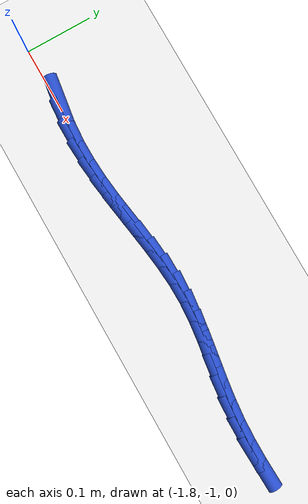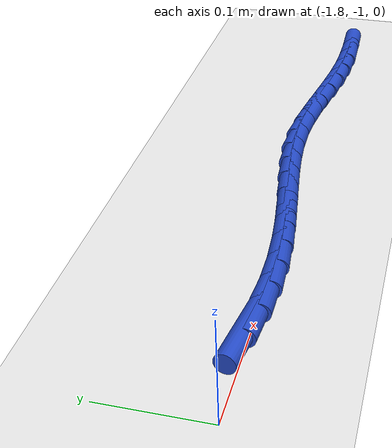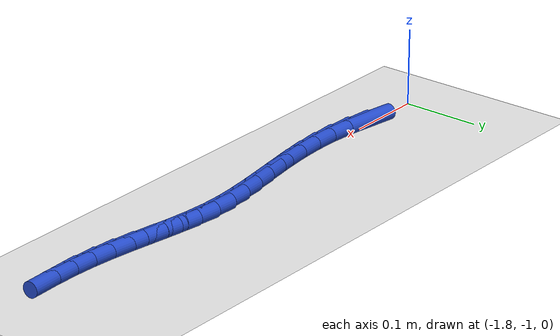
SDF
<sdf version="1.6">
 <world name="default">
  <model name="ground_plane">
   <static>1</static>
   <link name="link">
    <collision name="collision">
     <geometry><plane><normal>0 0 1</normal><size>100 100</size></plane></geometry>
     <surface><friction><ode><mu>100</mu><mu2>50</mu2></ode></friction></surface>
    </collision>
    <visual name="visual">
     <cast_shadows>0</cast_shadows>
     <geometry><plane><normal>0 0 1</normal><size>100 100</size></plane></geometry>
     <material>
      <script><uri>file://media/materials/scripts/gazebo.material</uri><name>Gazebo/WhiteGlow</name></script>
     </material>
    </visual>
   </link>
  </model>
  <model name="line">
   <link name="link_162">
    <pose>-1.7097868054885064 -0.9969438964311816 0.01 0 1.57 -0.14952670782931618</pose>
    <collision name="collision">
     <geometry><cylinder><radius>0.01</radius><length>0.08</length></cylinder></geometry>
    </collision>
    <visual name="visual">
     <material>
      <script><name>Gazebo/Blue</name><uri>file://media/materials/scripts/gazebo.material</uri></script>
     </material>
     <geometry><cylinder><radius>0.01</radius><length>0.08</length></cylinder></geometry>
    </visual>
   </link>
   <link name="link_163">
    <pose>-1.6773682703572474 -1.0018277860172708 0.01 0 1.57 -0.07193133679579392</pose>
    <collision name="collision">
     <geometry><cylinder><radius>0.01</radius><length>0.08</length></cylinder></geometry>
    </collision>
    <visual name="visual">
     <material>
      <script><name>Gazebo/Blue</name><uri>file://media/materials/scripts/gazebo.material</uri></script>
     </material>
     <geometry><cylinder><radius>0.01</radius><length>0.08</length></cylinder></geometry>
    </visual>
   </link>
   <link name="link_164">
    <pose>-1.6455465160319445 -1.0041207233520462 0.01 0 1.57 0.0020062523050467314</pose>
    <collision name="collision">
     <geometry><cylinder><radius>0.01</radius><length>0.08</length></cylinder></geometry>
    </collision>
    <visual name="visual">
     <material>
      <script><name>Gazebo/Blue</name><uri>file://media/materials/scripts/gazebo.material</uri></script>
     </material>
     <geometry><cylinder><radius>0.01</radius><length>0.08</length></cylinder></geometry>
    </visual>
   </link>
   <link name="link_165">
    <pose>-1.6146300442688435 -1.0040586970260879 0.01 0 1.57 0.06336556788681137</pose>
    <collision name="collision">
     <geometry><cylinder><radius>0.01</radius><length>0.08</length></cylinder></geometry>
    </collision>
    <visual name="visual">
     <material>
      <script><name>Gazebo/Blue</name><uri>file://media/materials/scripts/gazebo.material</uri></script>
     </material>
     <geometry><cylinder><radius>0.01</radius><length>0.08</length></cylinder></geometry>
    </visual>
   </link>
   <link name="link_166">
    <pose>-1.5845042616076108 -1.0021472006709864 0.01 0 1.57 0.10960710868851047</pose>
    <collision name="collision">
     <geometry><cylinder><radius>0.01</radius><length>0.08</length></cylinder></geometry>
    </collision>
    <visual name="visual">
     <material>
      <script><name>Gazebo/Blue</name><uri>file://media/materials/scripts/gazebo.material</uri></script>
     </material>
     <geometry><cylinder><radius>0.01</radius><length>0.08</length></cylinder></geometry>
    </visual>
   </link>
   <link name="link_167">
    <pose>-1.5550350453912818 -0.9989041677113919 0.01 0 1.57 0.13923444870832744</pose>
    <collision name="collision">
     <geometry><cylinder><radius>0.01</radius><length>0.08</length></cylinder></geometry>
    </collision>
    <visual name="visual">
     <material>
      <script><name>Gazebo/Blue</name><uri>file://media/materials/scripts/gazebo.material</uri></script>
     </material>
     <geometry><cylinder><radius>0.01</radius><length>0.08</length></cylinder></geometry>
    </visual>
   </link>
   <link name="link_168">
    <pose>-1.5260882729628908 -0.9948475315719542 0.01 0 1.57 0.1512362341787915</pose>
    <collision name="collision">
     <geometry><cylinder><radius>0.01</radius><length>0.08</length></cylinder></geometry>
    </collision>
    <visual name="visual">
     <material>
      <script><name>Gazebo/Blue</name><uri>file://media/materials/scripts/gazebo.material</uri></script>
     </material>
     <geometry><cylinder><radius>0.01</radius><length>0.08</length></cylinder></geometry>
    </visual>
   </link>
   <link name="link_169">
    <pose>-1.4975298216654733 -0.9904952256773236 0.01 0 1.57 0.14489340337528492</pose>
    <collision name="collision">
     <geometry><cylinder><radius>0.01</radius><length>0.08</length></cylinder></geometry>
    </collision>
    <visual name="visual">
     <material>
      <script><name>Gazebo/Blue</name><uri>file://media/materials/scripts/gazebo.material</uri></script>
     </material>
     <geometry><cylinder><radius>0.01</radius><length>0.08</length></cylinder></geometry>
    </visual>
   </link>
   <link name="link_170">
    <pose>-1.469225568842064 -0.9863651834521499 0.01 0 1.57 0.11969977703348632</pose>
    <collision name="collision">
     <geometry><cylinder><radius>0.01</radius><length>0.08</length></cylinder></geometry>
    </collision>
    <visual name="visual">
     <material>
      <script><name>Gazebo/Blue</name><uri>file://media/materials/scripts/gazebo.material</uri></script>
     </material>
     <geometry><cylinder><radius>0.01</radius><length>0.08</length></cylinder></geometry>
    </visual>
   </link>
   <link name="link_171">
    <pose>-1.4410413918356995 -0.9829753383210841 0.01 0 1.57 0.07545395734451958</pose>
    <collision name="collision">
     <geometry><cylinder><radius>0.01</radius><length>0.08</length></cylinder></geometry>
    </collision>
    <visual name="visual">
     <material>
      <script><name>Gazebo/Blue</name><uri>file://media/materials/scripts/gazebo.material</uri></script>
     </material>
     <geometry><cylinder><radius>0.01</radius><length>0.08</length></cylinder></geometry>
    </visual>
   </link>
   <link name="link_172">
    <pose>-1.4128431679894136 -0.9808436237087745 0.01 0 1.57 0.012545935016749093</pose>
    <collision name="collision">
     <geometry><cylinder><radius>0.01</radius><length>0.08</length></cylinder></geometry>
    </collision>
    <visual name="visual">
     <material>
      <script><name>Gazebo/Blue</name><uri>file://media/materials/scripts/gazebo.material</uri></script>
     </material>
     <geometry><cylinder><radius>0.01</radius><length>0.08</length></cylinder></geometry>
    </visual>
   </link>
   <link name="link_173">
    <pose>-1.3844967746462424 -0.9804879730398735 0.01 0 1.57 -0.06244571813984419</pose>
    <collision name="collision">
     <geometry><cylinder><radius>0.01</radius><length>0.08</length></cylinder></geometry>
    </collision>
    <visual name="visual">
     <material>
      <script><name>Gazebo/Blue</name><uri>file://media/materials/scripts/gazebo.material</uri></script>
     </material>
     <geometry><cylinder><radius>0.01</radius><length>0.08</length></cylinder></geometry>
    </visual>
   </link>
   <link name="link_174">
    <pose>-1.355891482303527 -0.9822765765346156 0.01 0 1.57 -0.11992222368818976</pose>
    <collision name="collision">
     <geometry><cylinder><radius>0.01</radius><length>0.08</length></cylinder></geometry>
    </collision>
    <visual name="visual">
     <material>
      <script><name>Gazebo/Blue</name><uri>file://media/materials/scripts/gazebo.material</uri></script>
     </material>
     <geometry><cylinder><radius>0.01</radius><length>0.08</length></cylinder></geometry>
    </visual>
   </link>
   <link name="link_175">
    <pose>-1.3270454584449412 -0.9857525348370265 0.01 0 1.57 -0.15125107053294345</pose>
    <collision name="collision">
     <geometry><cylinder><radius>0.01</radius><length>0.08</length></cylinder></geometry>
    </collision>
    <visual name="visual">
     <material>
      <script><name>Gazebo/Blue</name><uri>file://media/materials/scripts/gazebo.material</uri></script>
     </material>
     <geometry><cylinder><radius>0.01</radius><length>0.08</length></cylinder></geometry>
    </visual>
   </link>
   <link name="link_176">
    <pose>-1.2980210269439878 -0.9901762966998193 0.01 0 1.57 -0.15762746545014314</pose>
    <collision name="collision">
     <geometry><cylinder><radius>0.01</radius><length>0.08</length></cylinder></geometry>
    </collision>
    <visual name="visual">
     <material>
      <script><name>Gazebo/Blue</name><uri>file://media/materials/scripts/gazebo.material</uri></script>
     </material>
     <geometry><cylinder><radius>0.01</radius><length>0.08</length></cylinder></geometry>
    </visual>
   </link>
   <link name="link_177">
    <pose>-1.2688805507553598 -0.9948080607109563 0.01 0 1.57 -0.13952534795680474</pose>
    <collision name="collision">
     <geometry><cylinder><radius>0.01</radius><length>0.08</length></cylinder></geometry>
    </collision>
    <visual name="visual">
     <material>
      <script><name>Gazebo/Blue</name><uri>file://media/materials/scripts/gazebo.material</uri></script>
     </material>
     <geometry><cylinder><radius>0.01</radius><length>0.08</length></cylinder></geometry>
    </visual>
   </link>
   <link name="link_178">
    <pose>-1.239686392833752 -0.9989080254584002 0.01 0 1.57 -0.0975049497254226</pose>
    <collision name="collision">
     <geometry><cylinder><radius>0.01</radius><length>0.08</length></cylinder></geometry>
    </collision>
    <visual name="visual">
     <material>
      <script><name>Gazebo/Blue</name><uri>file://media/materials/scripts/gazebo.material</uri></script>
     </material>
     <geometry><cylinder><radius>0.01</radius><length>0.08</length></cylinder></geometry>
    </visual>
   </link>
   <link name="link_179">
    <pose>-1.2104989224961027 -1.0017630016503656 0.01 0 1.57 -0.046983507664717684</pose>
    <collision name="collision">
     <geometry><cylinder><radius>0.01</radius><length>0.08</length></cylinder></geometry>
    </collision>
    <visual name="visual">
     <material>
      <script><name>Gazebo/Blue</name><uri>file://media/materials/scripts/gazebo.material</uri></script>
     </material>
     <geometry><cylinder><radius>0.01</radius><length>0.08</length></cylinder></geometry>
    </visual>
   </link>
   <link name="link_180">
    <pose>-1.1813429951509067 -1.0031338582338536 0.01 0 1.57 -0.0019121085496181184</pose>
    <collision name="collision">
     <geometry><cylinder><radius>0.01</radius><length>0.08</length></cylinder></geometry>
    </collision>
    <visual name="visual">
     <material>
      <script><name>Gazebo/Blue</name><uri>file://media/materials/scripts/gazebo.material</uri></script>
     </material>
     <geometry><cylinder><radius>0.01</radius><length>0.08</length></cylinder></geometry>
    </visual>
   </link>
   <link name="link_181">
    <pose>-1.152212893981671 -1.0031895582172332 0.01 0 1.57 0.03698520844126967</pose>
    <collision name="collision">
     <geometry><cylinder><radius>0.01</radius><length>0.08</length></cylinder></geometry>
    </collision>
    <visual name="visual">
     <material>
      <script><name>Gazebo/Blue</name><uri>file://media/materials/scripts/gazebo.material</uri></script>
     </material>
     <geometry><cylinder><radius>0.01</radius><length>0.08</length></cylinder></geometry>
    </visual>
   </link>
  </model>
 </world>
</sdf>
